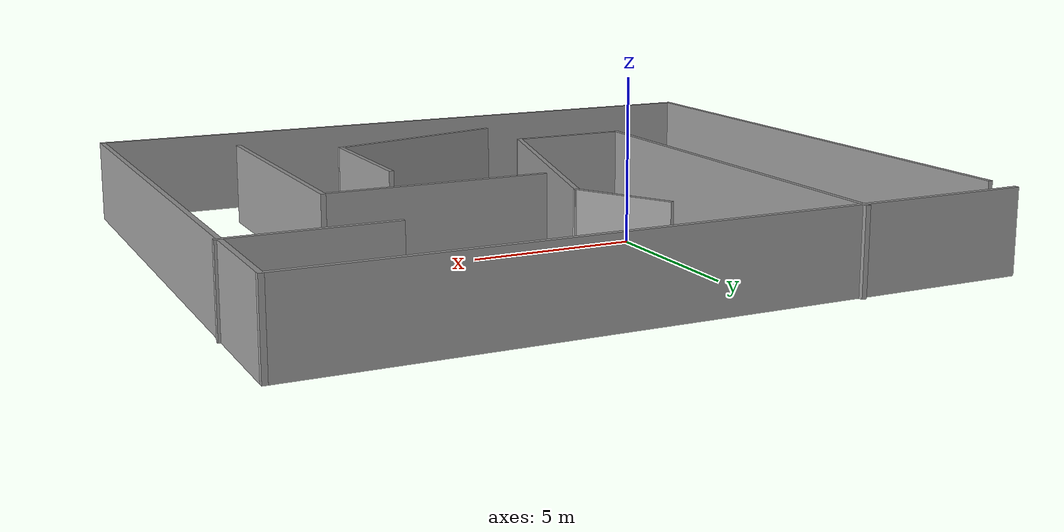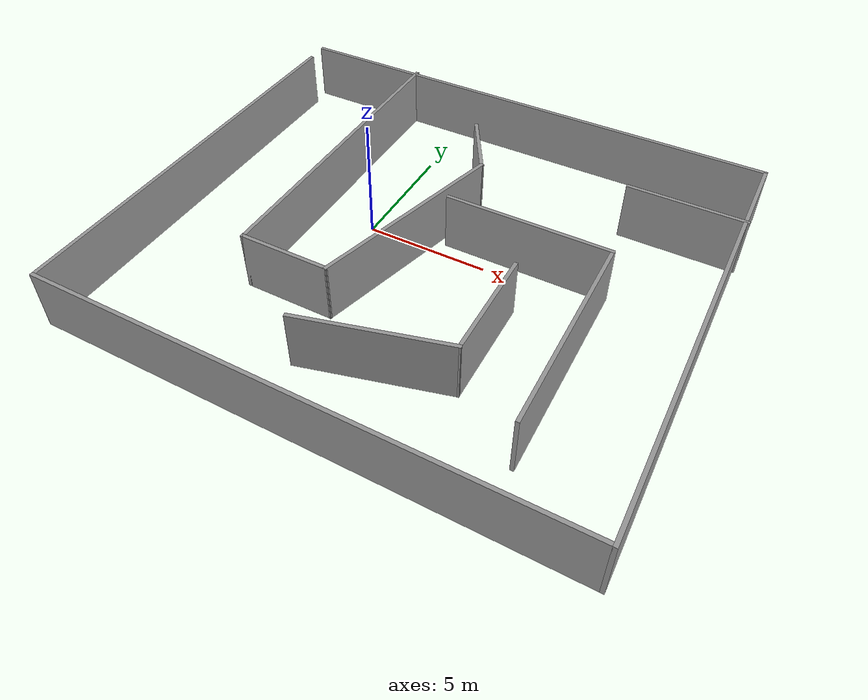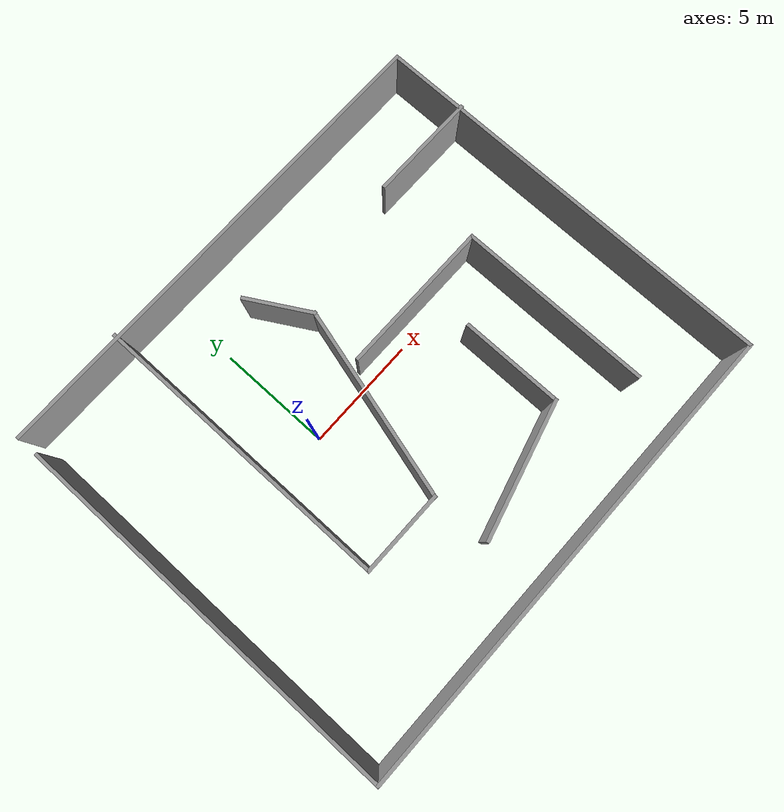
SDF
<?xml version='1.0'?>
<sdf version='1.7'>
  <model name='gazebo'>
    <pose>3.02427 -0.991024 0 0 -0 0</pose>
    <link name='Wall_10'>
      <collision name='Wall_10_Collision'>
        <geometry>
          <box>
            <size>3.75 0.15 2.5</size>
          </box>
        </geometry>
        <pose>0 0 1.25 0 -0 0</pose>
      </collision>
      <visual name='Wall_10_Visual'>
        <pose>0 0 1.25 0 -0 0</pose>
        <geometry>
          <box>
            <size>3.75 0.15 2.5</size>
          </box>
        </geometry>
        <material>
          <script>
            <uri>file://media/materials/scripts/gazebo.material</uri>
            <name>Gazebo/Grey</name>
          </script>
          <ambient>1 1 1 1</ambient>
        </material>
        <meta>
          <layer>0</layer>
        </meta>
      </visual>
      <pose>-3.63772 -3.98682 0 0 -0 0</pose>
    </link>
    <link name='Wall_11'>
      <collision name='Wall_11_Collision'>
        <geometry>
          <box>
            <size>8.5 0.15 2.5</size>
          </box>
        </geometry>
        <pose>0 0 1.25 0 -0 0</pose>
      </collision>
      <visual name='Wall_11_Visual'>
        <pose>0 0 1.25 0 -0 0</pose>
        <geometry>
          <box>
            <size>8.5 0.15 2.5</size>
          </box>
        </geometry>
        <material>
          <script>
            <uri>file://media/materials/scripts/gazebo.material</uri>
            <name>Gazebo/Grey</name>
          </script>
          <ambient>1 1 1 1</ambient>
        </material>
        <meta>
          <layer>0</layer>
        </meta>
      </visual>
      <pose>-0.757147 0.04592 0 0 -0 1.309</pose>
    </link>
    <link name='Wall_12'>
      <collision name='Wall_12_Collision'>
        <geometry>
          <box>
            <size>3 0.15 2.5</size>
          </box>
        </geometry>
        <pose>0 0 1.25 0 -0 0</pose>
      </collision>
      <visual name='Wall_12_Visual'>
        <pose>0 0 1.25 0 -0 0</pose>
        <geometry>
          <box>
            <size>3 0.15 2.5</size>
          </box>
        </geometry>
        <material>
          <script>
            <uri>file://media/materials/scripts/gazebo.material</uri>
            <name>Gazebo/Grey</name>
          </script>
          <ambient>1 1 1 1</ambient>
        </material>
        <meta>
          <layer>0</layer>
        </meta>
      </visual>
      <pose>-0.389078 5.31275 0 0 -0 2.0944</pose>
    </link>
    <link name='Wall_14'>
      <collision name='Wall_14_Collision'>
        <geometry>
          <box>
            <size>6 0.15 2.5</size>
          </box>
        </geometry>
        <pose>0 0 1.25 0 -0 0</pose>
      </collision>
      <visual name='Wall_14_Visual'>
        <pose>0 0 1.25 0 -0 0</pose>
        <geometry>
          <box>
            <size>6 0.15 2.5</size>
          </box>
        </geometry>
        <material>
          <script>
            <uri>file://media/materials/scripts/gazebo.material</uri>
            <name>Gazebo/Grey</name>
          </script>
          <ambient>1 1 1 1</ambient>
        </material>
        <meta>
          <layer>0</layer>
        </meta>
      </visual>
      <pose>1.08851 -5.73791 0 0 -0 0.261799</pose>
    </link>
    <link name='Wall_16'>
      <collision name='Wall_16_Collision'>
        <geometry>
          <box>
            <size>4.5 0.15 2.5</size>
          </box>
        </geometry>
        <pose>0 0 1.25 0 -0 0</pose>
      </collision>
      <visual name='Wall_16_Visual'>
        <pose>0 0 1.25 0 -0 0</pose>
        <geometry>
          <box>
            <size>4.5 0.15 2.5</size>
          </box>
        </geometry>
        <material>
          <script>
            <uri>file://media/materials/scripts/gazebo.material</uri>
            <name>Gazebo/Grey</name>
          </script>
          <ambient>1 1 1 1</ambient>
        </material>
        <meta>
          <layer>0</layer>
        </meta>
      </visual>
      <pose>3.91385 -2.80586 0 0 -0 1.5708</pose>
    </link>
    <link name='Wall_18'>
      <collision name='Wall_18_Collision'>
        <geometry>
          <box>
            <size>6.75 0.15 2.5</size>
          </box>
        </geometry>
        <pose>0 0 1.25 0 -0 0</pose>
      </collision>
      <visual name='Wall_18_Visual'>
        <pose>0 0 1.25 0 -0 0</pose>
        <geometry>
          <box>
            <size>6.75 0.15 2.5</size>
          </box>
        </geometry>
        <material>
          <script>
            <uri>file://media/materials/scripts/gazebo.material</uri>
            <name>Gazebo/Grey</name>
          </script>
          <ambient>1 1 1 1</ambient>
        </material>
        <meta>
          <layer>0</layer>
        </meta>
      </visual>
      <pose>3.41363 1.63093 0 0 -0 0</pose>
    </link>
    <link name='Wall_19'>
      <collision name='Wall_19_Collision'>
        <geometry>
          <box>
            <size>8.5 0.15 2.5</size>
          </box>
        </geometry>
        <pose>0 0 1.25 0 -0 0</pose>
      </collision>
      <visual name='Wall_19_Visual'>
        <pose>0 0 1.25 0 -0 0</pose>
        <geometry>
          <box>
            <size>8.5 0.15 2.5</size>
          </box>
        </geometry>
        <material>
          <script>
            <uri>file://media/materials/scripts/gazebo.material</uri>
            <name>Gazebo/Grey</name>
          </script>
          <ambient>1 1 1 1</ambient>
        </material>
        <meta>
          <layer>0</layer>
        </meta>
      </visual>
      <pose>6.71363 -2.54407 0 0 -0 -1.5708</pose>
    </link>
    <link name='Wall_21'>
      <collision name='Wall_21_Collision'>
        <geometry>
          <box>
            <size>4.75 0.15 2.5</size>
          </box>
        </geometry>
        <pose>0 0 1.25 0 -0 0</pose>
      </collision>
      <visual name='Wall_21_Visual'>
        <pose>0 0 1.25 0 -0 0</pose>
        <geometry>
          <box>
            <size>4.75 0.15 2.5</size>
          </box>
        </geometry>
        <material>
          <script>
            <uri>file://media/materials/scripts/gazebo.material</uri>
            <name>Gazebo/Grey</name>
          </script>
          <ambient>1 1 1 1</ambient>
        </material>
        <meta>
          <layer>0</layer>
        </meta>
      </visual>
      <pose>8.28679 5.57319 0 0 -0 0</pose>
    </link>
    <link name='Wall_3'>
      <collision name='Wall_3_Collision'>
        <geometry>
          <box>
            <size>17.25 0.15 2.5</size>
          </box>
        </geometry>
        <pose>0 0 1.25 0 -0 0</pose>
      </collision>
      <visual name='Wall_3_Visual'>
        <pose>0 0 1.25 0 -0 0</pose>
        <geometry>
          <box>
            <size>17.25 0.15 2.5</size>
          </box>
        </geometry>
        <material>
          <script>
            <uri>file://media/materials/scripts/gazebo.material</uri>
            <name>Gazebo/Grey</name>
          </script>
          <ambient>1 1 1 1</ambient>
        </material>
        <meta>
          <layer>0</layer>
        </meta>
      </visual>
      <pose>-10.5868 -0.56318 0 0 -0 -1.5708</pose>
    </link>
    <link name='Wall_4'>
      <collision name='Wall_4_Collision'>
        <geometry>
          <box>
            <size>21.25 0.15 2.5</size>
          </box>
        </geometry>
        <pose>0 0 1.25 0 -0 0</pose>
      </collision>
      <visual name='Wall_4_Visual'>
        <pose>0 0 1.25 0 -0 0</pose>
        <geometry>
          <box>
            <size>21.25 0.15 2.5</size>
          </box>
        </geometry>
        <material>
          <script>
            <uri>file://media/materials/scripts/gazebo.material</uri>
            <name>Gazebo/Grey</name>
          </script>
          <ambient>1 1 1 1</ambient>
        </material>
        <meta>
          <layer>0</layer>
        </meta>
      </visual>
      <pose>-0.036791 -9.11318 0 0 -0 0</pose>
    </link>
    <link name='Wall_5'>
      <collision name='Wall_5_Collision'>
        <geometry>
          <box>
            <size>18.25 0.15 2.5</size>
          </box>
        </geometry>
        <pose>0 0 1.25 0 -0 0</pose>
      </collision>
      <visual name='Wall_5_Visual'>
        <pose>0 0 1.25 0 -0 0</pose>
        <geometry>
          <box>
            <size>18.25 0.15 2.5</size>
          </box>
        </geometry>
        <material>
          <script>
            <uri>file://media/materials/scripts/gazebo.material</uri>
            <name>Gazebo/Grey</name>
          </script>
          <ambient>1 1 1 1</ambient>
        </material>
        <meta>
          <layer>0</layer>
        </meta>
      </visual>
      <pose>10.5132 -0.06318 0 0 -0 1.5708</pose>
    </link>
    <link name='Wall_6'>
      <collision name='Wall_6_Collision'>
        <geometry>
          <box>
            <size>21.25 0.15 2.5</size>
          </box>
        </geometry>
        <pose>0 0 1.25 0 -0 0</pose>
      </collision>
      <visual name='Wall_6_Visual'>
        <pose>0 0 1.25 0 -0 0</pose>
        <geometry>
          <box>
            <size>21.25 0.15 2.5</size>
          </box>
        </geometry>
        <material>
          <script>
            <uri>file://media/materials/scripts/gazebo.material</uri>
            <name>Gazebo/Grey</name>
          </script>
          <ambient>1 1 1 1</ambient>
        </material>
        <meta>
          <layer>0</layer>
        </meta>
      </visual>
      <pose>-0.036791 8.98682 0 0 -0 3.14159</pose>
    </link>
    <link name='Wall_9'>
      <collision name='Wall_9_Collision'>
        <geometry>
          <box>
            <size>13.25 0.15 2.5</size>
          </box>
        </geometry>
        <pose>0 0 1.25 0 -0 0</pose>
      </collision>
      <visual name='Wall_9_Visual'>
        <pose>0 0 1.25 0 -0 0</pose>
        <geometry>
          <box>
            <size>13.25 0.15 2.5</size>
          </box>
        </geometry>
        <material>
          <script>
            <uri>file://media/materials/scripts/gazebo.material</uri>
            <name>Gazebo/Grey</name>
          </script>
          <ambient>1 1 1 1</ambient>
        </material>
        <meta>
          <layer>0</layer>
        </meta>
      </visual>
      <pose>-5.43772 2.56318 0 0 -0 -1.5708</pose>
    </link>
    <static>1</static>
  </model>
</sdf>
